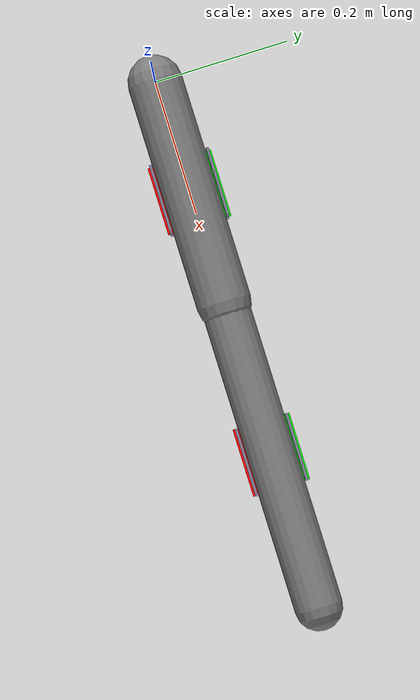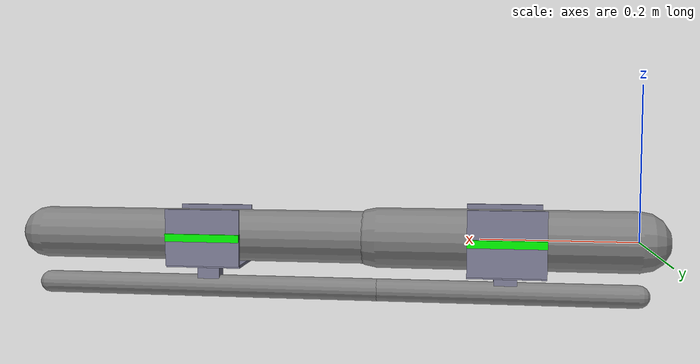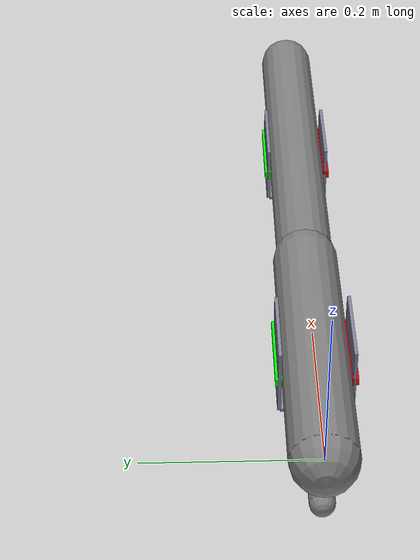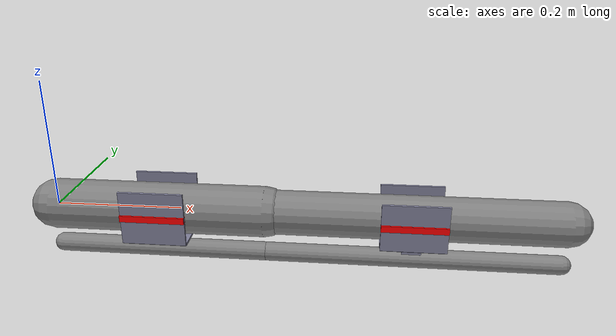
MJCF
<mujoco model="exo_arm_sim">
    <compiler angle="degree" inertiafromgeom="false"/>

    <option gravity="0 0 0" integrator="RK4" timestep="0.001"
            solver="PGS" noslip_iterations="50">
        <flag contact="enable"/>
    </option>

    <default>
        <default class="human">
            <geom solref="0.01 1" solimp="0.8 0.8 0.001" contype="1" conaffinity="1" friction="0 0 0"/>
            <material rgba="0.9 0.7 0.5 1"/>
        </default>
        <default class="exo">
            <geom contype="1" conaffinity="1" friction="0 0 0"/>
            <material rgba="0.3 0.3 0.3 0.8"/>
        </default>
    </default>

    <asset>
        <material name="cuff_mat" rgba="0.5 0.5 0.6 1.0"/>
    </asset>

    <worldbody>
        <light diffuse=".5 .5 .5" pos="0 0 3" dir="0 0 -1"/>
        <site name="shoulder_anchor" pos="0 0 0" size="0.01" rgba="1 0 0 0"/>

        <body name="human_upper_arm" pos="0 0 0">
            <inertial pos="0.146 0 0" mass="2.1" diaginertia="0.0058 0.0244 0.0244" />
            <joint name="human_shoulder" type="hinge" axis="0 0 1" pos="0 0 0" damping="0.05" range="0 150"/>
            <geom name="human_upper_arm_geom" type="capsule" fromto="0 0 0 0.335 0 0" size="0.04" class="human"/>

            <body name="human_forearm" pos="0.335 0 0">
                <inertial pos="0.181 0 0" mass="1.65" diaginertia="0.003 0.025 0.025" />
                <joint name="human_elbow" type="hinge" axis="0 0 1" pos="0 0 0" damping="0.05" range="0 150"/>
                <geom name="human_forearm_geom" type="capsule" fromto="0 0 0 0.457 0 0" size="0.035" class="human"/>
            </body>
        </body>

        <body name="exo_upper_link" pos="0 0 0">
            <inertial pos="0.1675 0 0" mass="1.2" diaginertia="0.001 0.001 0.001" />
            <joint name="exo_shoulder" type="hinge" axis="0 0 1" pos="0 0 0"/>

            <geom name="exo_upper_boom" type="capsule" fromto="0 0 -0.07 0.335 0 -0.07" size="0.015" class="exo"/>
            <geom name="exo_shoulder_bracket" type="box" pos="0.1675 0 -0.0565" size="0.015 0.01 0.01"
                material="cuff_mat"/>

            <geom name="shoulder_cuff_bottom" type="box" pos="0.1675 0 -0.043" size="0.05 0.041 0.002"
                material="cuff_mat" class="exo"/>
            <geom name="shoulder_cuff_right" type="box" pos="0.1675 0.0425 0" size="0.05 0.002 0.0425"
                material="cuff_mat" class="exo"/>
            <geom name="shoulder_cuff_left" type="box" pos="0.1675 -0.0425 0" size="0.05 0.002 0.0425"
                material="cuff_mat" class="exo"/>
            <site name="shoulder_site_left" pos="0.1675 0.0425 0" type="box" size="0.05" rgba="0 1 0 1"/>
            <site name="shoulder_site_right" pos="0.1675 -0.0425 0" type="box" size="0.05" rgba="1 0 0 1"/>

            <body name="exo_lower_link" pos="0.335 0 0">
                <inertial pos="0.2285 0 0" mass="1.5" diaginertia="0.001 0.001 0.001" />
                <joint name="exo_elbow" type="hinge" axis="0 0 1" pos="0 0 0"/>

                <geom name="exo_lower_boom" type="capsule" fromto="0 0 -0.07 0.457 0 -0.07" size="0.015" class="exo"/>
                <geom name="exo_elbow_bracket" type="box" pos="0.2285 0 -0.054" size="0.015 0.01 0.017"
                    material="cuff_mat"/>

                <geom name="elbow_cuff_bottom" type="box" pos="0.2285 0 -0.038" size="0.05 0.036 0.002"
                    material="cuff_mat" class="exo"/>
                <geom name="elbow_cuff_left" type="box" pos="0.2285 0.0375 0" size="0.05 0.002 0.0375"
                    material="cuff_mat" class="exo"/>
                <geom name="elbow_cuff_right" type="box" pos="0.2285 -0.0375 0"  size="0.05 0.002 0.0375"
                    material="cuff_mat" class="exo"/>
                <site name="elbow_site_left" pos="0.2285 0.0375 0" type="box" size="0.05" rgba="0 1 0 1"/>
                <site name="elbow_site_right" pos="0.2285 -0.0375 0" type="box" size="0.05" rgba="1 0 0 1"/>
            </body>
        </body>
    </worldbody>

    <actuator>
        <motor joint="exo_shoulder" name="exo_shoulder_motor" gear="1" ctrllimited="true" ctrlrange="-20 20"/>
        <motor joint="exo_elbow" name="exo_elbow_motor" gear="1" ctrllimited="true" ctrlrange="-20 20"/>
        <motor joint="human_shoulder" name="human_shoulder_motor" gear="1" ctrllimited="true" ctrlrange="-20 20"/>
        <motor joint="human_elbow" name="human_elbow_motor" gear="1" ctrllimited="true" ctrlrange="-20 20"/>
    </actuator>

    <sensor>
        <touch name="sho_pressure_left" site="shoulder_site_left"/>
        <touch name="sho_pressure_right" site="shoulder_site_right"/>
        <touch name="elb_pressure_left" site="elbow_site_left"/>
        <touch name="elb_pressure_right" site="elbow_site_right"/>
    </sensor>

    <keyframe>
        <key name="start_pose" qpos="45 75 45 75"/>
    </keyframe>
</mujoco>
